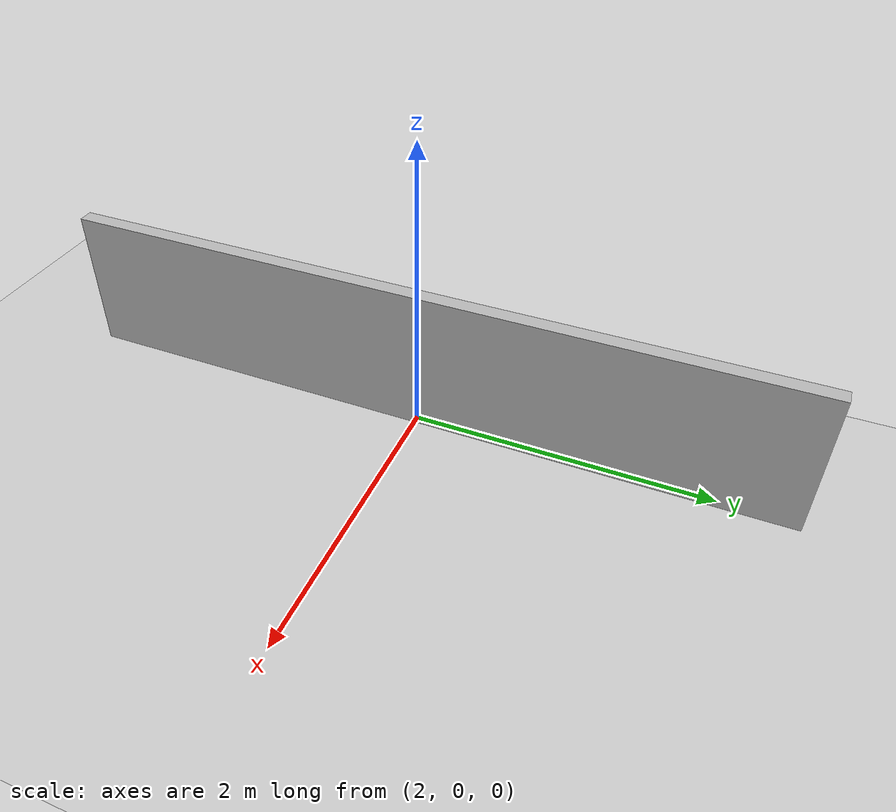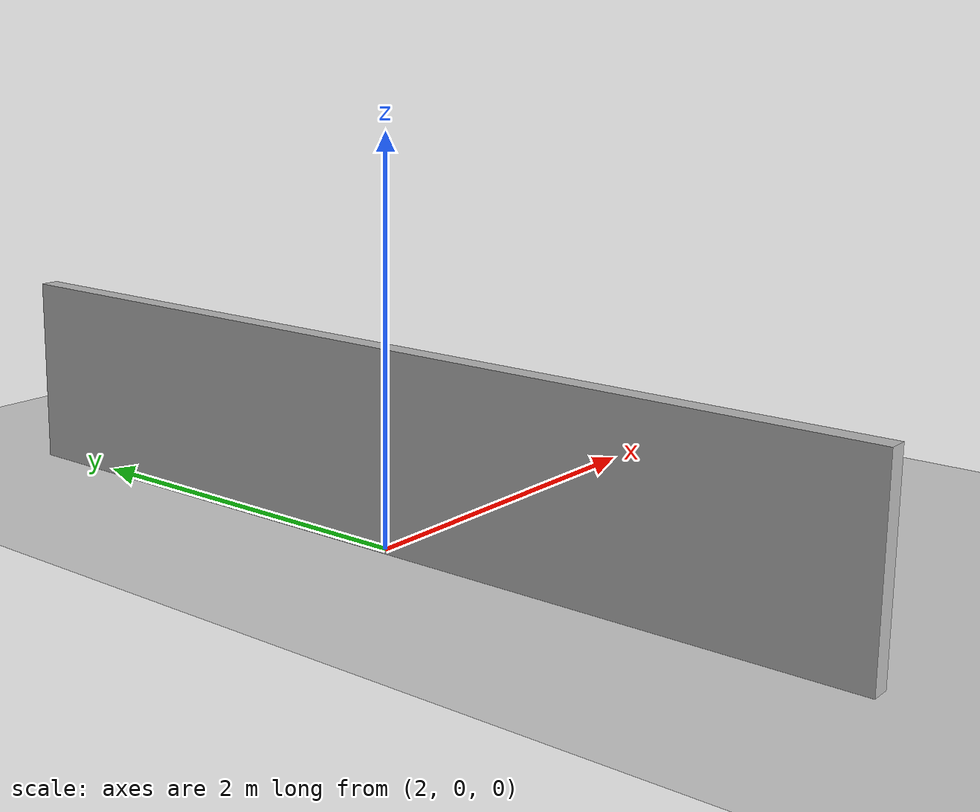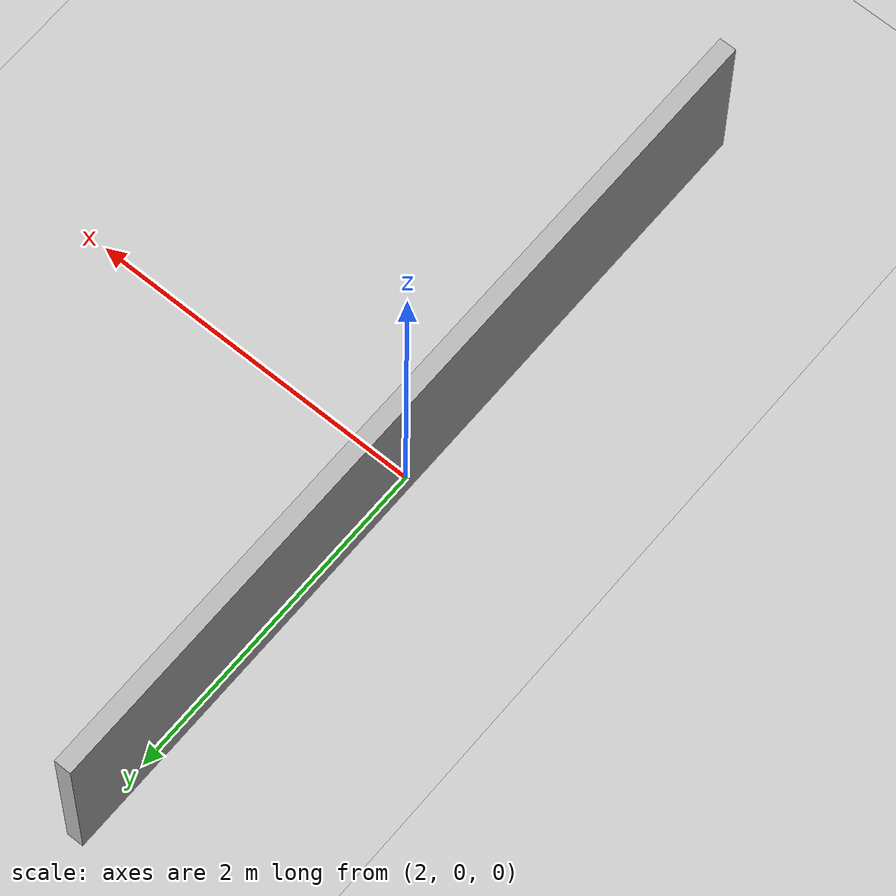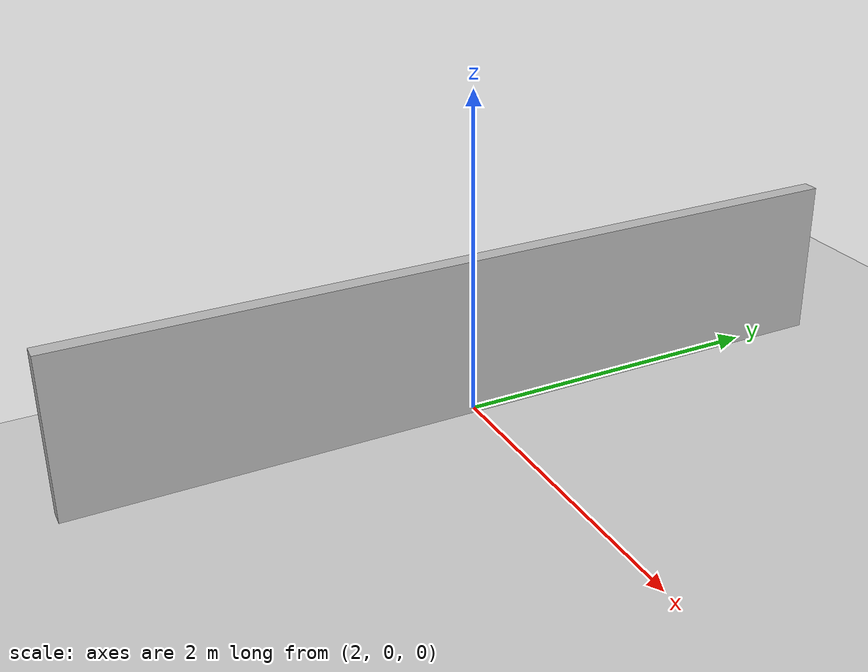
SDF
<?xml version="1.0" ?>
<sdf version="1.6">
  <world name="default">
    <include>
      <uri>model://ground_plane</uri>
    </include>
    <include>
      <uri>model://sun</uri>
    </include>

    <model name="warehouse_wall">
      <static>true</static>
      <pose>2.0 0 0.5 0 0 0</pose>
      <link name="link">
        <collision name="collision">
          <geometry><box><size>0.1 5.0 1.0</size></box></geometry>
        </collision>
        <visual name="visual">
          <geometry><box><size>0.1 5.0 1.0</size></box></geometry>
        </visual>
      </link>
    </model>
  </world>
</sdf>
